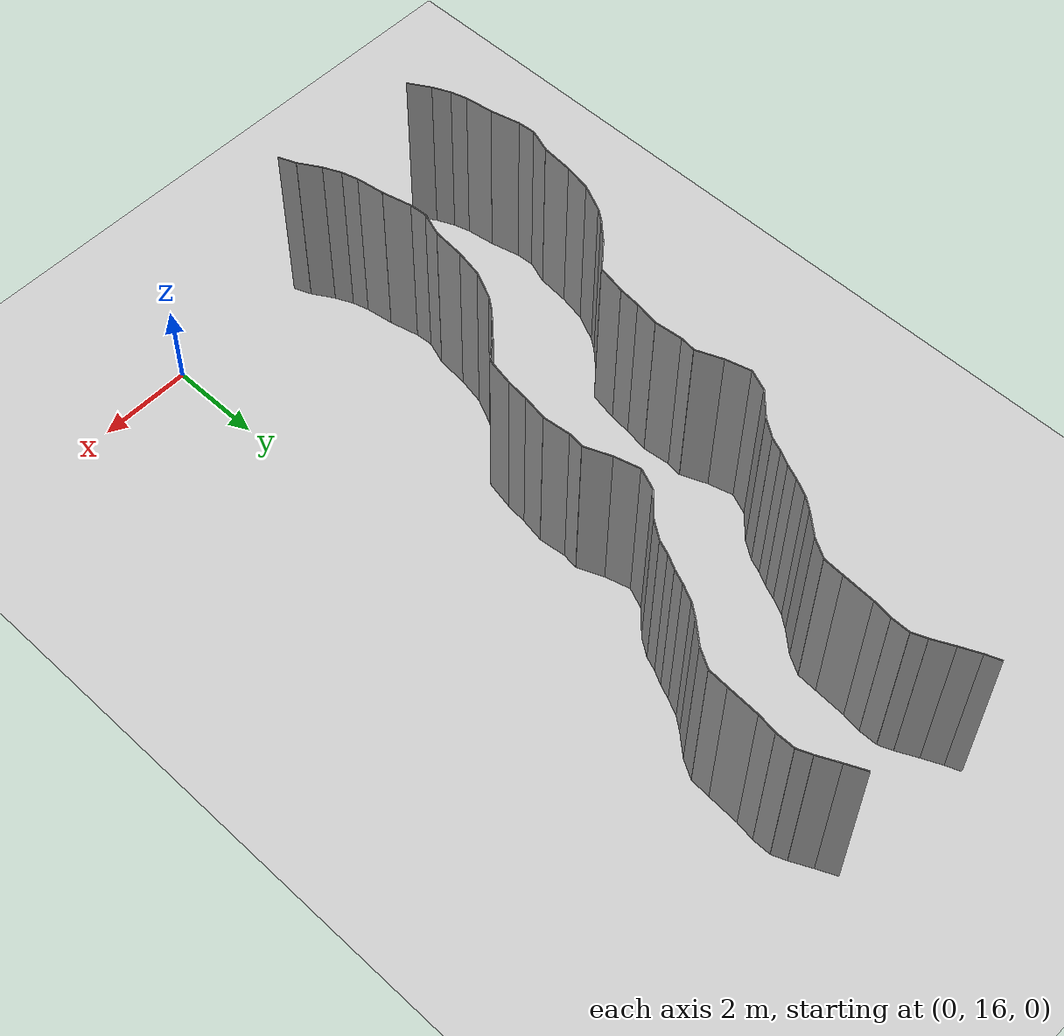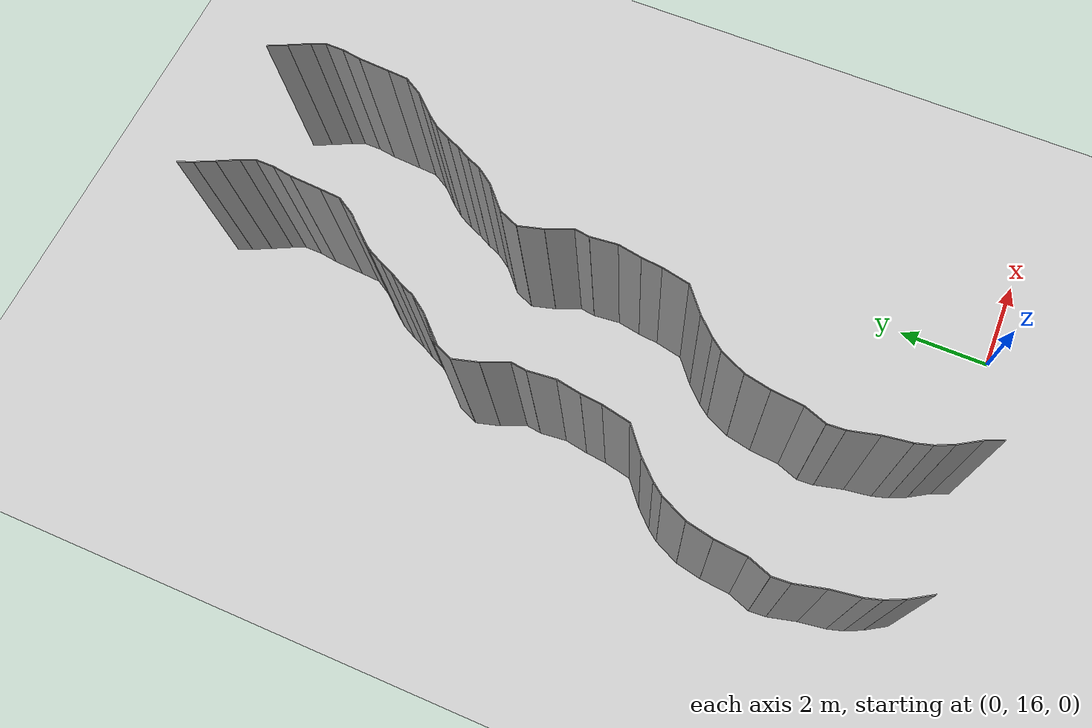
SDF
<sdf version="1.6">
 <world name="default">
  <model name="ground_plane">
   <static>1</static>
   <link name="link">
    <collision name="collision">
     <geometry><plane><normal>0 0 1</normal><size>200 200</size></plane></geometry>
     <surface><friction><ode><mu>100</mu><mu2>50</mu2></ode></friction></surface>
    </collision>
    <visual name="visual">
     <cast_shadows>0</cast_shadows>
     <geometry><plane><normal>0 0 1</normal><size>200 200</size></plane></geometry>
     <material>
      <script><uri>file://media/materials/scripts/gazebo.material</uri><name>Gazebo/Grey</name></script>
     </material>
    </visual>
   </link>
   <pose>0 100 0 0 -0 0</pose>
  </model>
  <model name="wall_73">
   <static>1</static>
   <pose>-3.2135046063755484 16.121047888354436 2 0 0 0.3879311940219435</pose>
   <link name="link">
    <collision name="collision"><geometry><box><size>0.02 0.390902560778 4</size></box></geometry></collision>
    <visual name="visual">
     <material>
      <script><name>Gazebo/Grey</name><uri>file://media/materials/scripts/gazebo.material</uri></script>
     </material>
     <geometry><box><size>0.02 0.390902560778 4</size></box></geometry>
    </visual>
   </link>
  </model>
  <model name="wall_74">
   <static>1</static>
   <pose>-6.423159324145948 16.52691575566886 2 0 0 0.5428891475938377</pose>
   <link name="link">
    <collision name="collision"><geometry><box><size>0.02 0.525425583429 4</size></box></geometry></collision>
    <visual name="visual">
     <material>
      <script><name>Gazebo/Grey</name><uri>file://media/materials/scripts/gazebo.material</uri></script>
     </material>
     <geometry><box><size>0.02 0.525425583429 4</size></box></geometry>
    </visual>
   </link>
  </model>
  <model name="wall_75">
   <static>1</static>
   <pose>-3.4231593241459484 16.52691575566886 2 0 0 0.5428891475938377</pose>
   <link name="link">
    <collision name="collision"><geometry><box><size>0.02 0.525425583429 4</size></box></geometry></collision>
    <visual name="visual">
     <material>
      <script><name>Gazebo/Grey</name><uri>file://media/materials/scripts/gazebo.material</uri></script>
     </material>
     <geometry><box><size>0.02 0.525425583429 4</size></box></geometry>
    </visual>
   </link>
  </model>
  <model name="wall_76">
   <static>1</static>
   <pose>-6.642992999649974 16.937795844756664 2 0 0 0.42482014487990305</pose>
   <link name="link">
    <collision name="collision"><geometry><box><size>0.02 0.408160677202 4</size></box></geometry></collision>
    <visual name="visual">
     <material>
      <script><name>Gazebo/Grey</name><uri>file://media/materials/scripts/gazebo.material</uri></script>
     </material>
     <geometry><box><size>0.02 0.408160677202 4</size></box></geometry>
    </visual>
   </link>
  </model>
  <model name="wall_77">
   <static>1</static>
   <pose>-3.642992999649974 16.937795844756664 2 0 0 0.42482014487990305</pose>
   <link name="link">
    <collision name="collision"><geometry><box><size>0.02 0.408160677202 4</size></box></geometry></collision>
    <visual name="visual">
     <material>
      <script><name>Gazebo/Grey</name><uri>file://media/materials/scripts/gazebo.material</uri></script>
     </material>
     <geometry><box><size>0.02 0.408160677202 4</size></box></geometry>
    </visual>
   </link>
  </model>
  <model name="wall_78">
   <static>1</static>
   <pose>-6.776393060284189 17.29553460870994 2 0 0 0.27938444021321307</pose>
   <link name="link">
    <collision name="collision"><geometry><box><size>0.02 0.357457356194 4</size></box></geometry></collision>
    <visual name="visual">
     <material>
      <script><name>Gazebo/Grey</name><uri>file://media/materials/scripts/gazebo.material</uri></script>
     </material>
     <geometry><box><size>0.02 0.357457356194 4</size></box></geometry>
    </visual>
   </link>
  </model>
  <model name="wall_79">
   <static>1</static>
   <pose>-3.776393060284189 17.29553460870994 2 0 0 0.27938444021321307</pose>
   <link name="link">
    <collision name="collision"><geometry><box><size>0.02 0.357457356194 4</size></box></geometry></collision>
    <visual name="visual">
     <material>
      <script><name>Gazebo/Grey</name><uri>file://media/materials/scripts/gazebo.material</uri></script>
     </material>
     <geometry><box><size>0.02 0.357457356194 4</size></box></geometry>
    </visual>
   </link>
  </model>
  <model name="wall_80">
   <static>1</static>
   <pose>-6.869227630001654 17.76519926221746 2 0 0 0.14517021884053985</pose>
   <link name="link">
    <collision name="collision"><geometry><box><size>0.02 0.602065172895 4</size></box></geometry></collision>
    <visual name="visual">
     <material>
      <script><name>Gazebo/Grey</name><uri>file://media/materials/scripts/gazebo.material</uri></script>
     </material>
     <geometry><box><size>0.02 0.602065172895 4</size></box></geometry>
    </visual>
   </link>
  </model>
  <model name="wall_81">
   <static>1</static>
   <pose>-3.869227630001654 17.76519926221746 2 0 0 0.14517021884053985</pose>
   <link name="link">
    <collision name="collision"><geometry><box><size>0.02 0.602065172895 4</size></box></geometry></collision>
    <visual name="visual">
     <material>
      <script><name>Gazebo/Grey</name><uri>file://media/materials/scripts/gazebo.material</uri></script>
     </material>
     <geometry><box><size>0.02 0.602065172895 4</size></box></geometry>
    </visual>
   </link>
  </model>
  <model name="wall_82">
   <static>1</static>
   <pose>-6.989073264993598 18.376267508968926 2 0 0 0.23895203746667829</pose>
   <link name="link">
    <collision name="collision"><geometry><box><size>0.02 0.644723076013 4</size></box></geometry></collision>
    <visual name="visual">
     <material>
      <script><name>Gazebo/Grey</name><uri>file://media/materials/scripts/gazebo.material</uri></script>
     </material>
     <geometry><box><size>0.02 0.644723076013 4</size></box></geometry>
    </visual>
   </link>
  </model>
  <model name="wall_83">
   <static>1</static>
   <pose>-3.989073264993598 18.376267508968926 2 0 0 0.23895203746667829</pose>
   <link name="link">
    <collision name="collision"><geometry><box><size>0.02 0.644723076013 4</size></box></geometry></collision>
    <visual name="visual">
     <material>
      <script><name>Gazebo/Grey</name><uri>file://media/materials/scripts/gazebo.material</uri></script>
     </material>
     <geometry><box><size>0.02 0.644723076013 4</size></box></geometry>
    </visual>
   </link>
  </model>
  <model name="wall_84">
   <static>1</static>
   <pose>-7.077106790539169 18.876067831468667 2 0 0 0.06280922234749874</pose>
   <link name="link">
    <collision name="collision"><geometry><box><size>0.02 0.37393372069 4</size></box></geometry></collision>
    <visual name="visual">
     <material>
      <script><name>Gazebo/Grey</name><uri>file://media/materials/scripts/gazebo.material</uri></script>
     </material>
     <geometry><box><size>0.02 0.37393372069 4</size></box></geometry>
    </visual>
   </link>
  </model>
  <model name="wall_85">
   <static>1</static>
   <pose>-4.077106790539169 18.876067831468667 2 0 0 0.06280922234749874</pose>
   <link name="link">
    <collision name="collision"><geometry><box><size>0.02 0.37393372069 4</size></box></geometry></collision>
    <visual name="visual">
     <material>
      <script><name>Gazebo/Grey</name><uri>file://media/materials/scripts/gazebo.material</uri></script>
     </material>
     <geometry><box><size>0.02 0.37393372069 4</size></box></geometry>
    </visual>
   </link>
  </model>
  <model name="wall_86">
   <static>1</static>
   <pose>-7.003478589189926 19.30421352085573 2 0 0 -0.33970364114893786</pose>
   <link name="link">
    <collision name="collision"><geometry><box><size>0.02 0.512375487982 4</size></box></geometry></collision>
    <visual name="visual">
     <material>
      <script><name>Gazebo/Grey</name><uri>file://media/materials/scripts/gazebo.material</uri></script>
     </material>
     <geometry><box><size>0.02 0.512375487982 4</size></box></geometry>
    </visual>
   </link>
  </model>
  <model name="wall_87">
   <static>1</static>
   <pose>-4.003478589189926 19.30421352085573 2 0 0 -0.33970364114893786</pose>
   <link name="link">
    <collision name="collision"><geometry><box><size>0.02 0.512375487982 4</size></box></geometry></collision>
    <visual name="visual">
     <material>
      <script><name>Gazebo/Grey</name><uri>file://media/materials/scripts/gazebo.material</uri></script>
     </material>
     <geometry><box><size>0.02 0.512375487982 4</size></box></geometry>
    </visual>
   </link>
  </model>
  <model name="wall_88">
   <static>1</static>
   <pose>-6.887422557820664 19.882661755863364 2 0 0 -0.09085114048353095</pose>
   <link name="link">
    <collision name="collision"><geometry><box><size>0.02 0.676591821013 4</size></box></geometry></collision>
    <visual name="visual">
     <material>
      <script><name>Gazebo/Grey</name><uri>file://media/materials/scripts/gazebo.material</uri></script>
     </material>
     <geometry><box><size>0.02 0.676591821013 4</size></box></geometry>
    </visual>
   </link>
  </model>
  <model name="wall_89">
   <static>1</static>
   <pose>-3.8874225578206643 19.882661755863364 2 0 0 -0.09085114048353095</pose>
   <link name="link">
    <collision name="collision"><geometry><box><size>0.02 0.676591821013 4</size></box></geometry></collision>
    <visual name="visual">
     <material>
      <script><name>Gazebo/Grey</name><uri>file://media/materials/scripts/gazebo.material</uri></script>
     </material>
     <geometry><box><size>0.02 0.676591821013 4</size></box></geometry>
    </visual>
   </link>
  </model>
  <model name="wall_90">
   <static>1</static>
   <pose>-6.799874366065468 20.504023033297106 2 0 0 -0.19727311434767117</pose>
   <link name="link">
    <collision name="collision"><geometry><box><size>0.02 0.580173738682 4</size></box></geometry></collision>
    <visual name="visual">
     <material>
      <script><name>Gazebo/Grey</name><uri>file://media/materials/scripts/gazebo.material</uri></script>
     </material>
     <geometry><box><size>0.02 0.580173738682 4</size></box></geometry>
    </visual>
   </link>
  </model>
  <model name="wall_91">
   <static>1</static>
   <pose>-3.7998743660654677 20.504023033297106 2 0 0 -0.19727311434767117</pose>
   <link name="link">
    <collision name="collision"><geometry><box><size>0.02 0.580173738682 4</size></box></geometry></collision>
    <visual name="visual">
     <material>
      <script><name>Gazebo/Grey</name><uri>file://media/materials/scripts/gazebo.material</uri></script>
     </material>
     <geometry><box><size>0.02 0.580173738682 4</size></box></geometry>
    </visual>
   </link>
  </model>
  <model name="wall_92">
   <static>1</static>
   <pose>-6.613866148938064 21.06647991866227 2 0 0 -0.4349146263797148</pose>
   <link name="link">
    <collision name="collision"><geometry><box><size>0.02 0.613065385241 4</size></box></geometry></collision>
    <visual name="visual">
     <material>
      <script><name>Gazebo/Grey</name><uri>file://media/materials/scripts/gazebo.material</uri></script>
     </material>
     <geometry><box><size>0.02 0.613065385241 4</size></box></geometry>
    </visual>
   </link>
  </model>
  <model name="wall_93">
   <static>1</static>
   <pose>-3.6138661489380643 21.06647991866227 2 0 0 -0.4349146263797148</pose>
   <link name="link">
    <collision name="collision"><geometry><box><size>0.02 0.613065385241 4</size></box></geometry></collision>
    <visual name="visual">
     <material>
      <script><name>Gazebo/Grey</name><uri>file://media/materials/scripts/gazebo.material</uri></script>
     </material>
     <geometry><box><size>0.02 0.613065385241 4</size></box></geometry>
    </visual>
   </link>
  </model>
  <model name="wall_94">
   <static>1</static>
   <pose>-6.3945283378572375 21.46519750203156 2 0 0 -0.6416140310875302</pose>
   <link name="link">
    <collision name="collision"><geometry><box><size>0.02 0.301377095944 4</size></box></geometry></collision>
    <visual name="visual">
     <material>
      <script><name>Gazebo/Grey</name><uri>file://media/materials/scripts/gazebo.material</uri></script>
     </material>
     <geometry><box><size>0.02 0.301377095944 4</size></box></geometry>
    </visual>
   </link>
  </model>
  <model name="wall_95">
   <static>1</static>
   <pose>-3.3945283378572375 21.46519750203156 2 0 0 -0.6416140310875302</pose>
   <link name="link">
    <collision name="collision"><geometry><box><size>0.02 0.301377095944 4</size></box></geometry></collision>
    <visual name="visual">
     <material>
      <script><name>Gazebo/Grey</name><uri>file://media/materials/scripts/gazebo.material</uri></script>
     </material>
     <geometry><box><size>0.02 0.301377095944 4</size></box></geometry>
    </visual>
   </link>
  </model>
  <model name="wall_96">
   <static>1</static>
   <pose>-6.1288649390775625 21.773012226696913 2 0 0 -0.7533724899892661</pose>
   <link name="link">
    <collision name="collision"><geometry><box><size>0.02 0.513016460556 4</size></box></geometry></collision>
    <visual name="visual">
     <material>
      <script><name>Gazebo/Grey</name><uri>file://media/materials/scripts/gazebo.material</uri></script>
     </material>
     <geometry><box><size>0.02 0.513016460556 4</size></box></geometry>
    </visual>
   </link>
  </model>
  <model name="wall_97">
   <static>1</static>
   <pose>-3.1288649390775625 21.773012226696913 2 0 0 -0.7533724899892661</pose>
   <link name="link">
    <collision name="collision"><geometry><box><size>0.02 0.513016460556 4</size></box></geometry></collision>
    <visual name="visual">
     <material>
      <script><name>Gazebo/Grey</name><uri>file://media/materials/scripts/gazebo.material</uri></script>
     </material>
     <geometry><box><size>0.02 0.513016460556 4</size></box></geometry>
    </visual>
   </link>
  </model>
  <model name="wall_98">
   <static>1</static>
   <pose>-5.69435812185841 22.177168624840412 2 0 0 -0.8733177553572878</pose>
   <link name="link">
    <collision name="collision"><geometry><box><size>0.02 0.675906142262 4</size></box></geometry></collision>
    <visual name="visual">
     <material>
      <script><name>Gazebo/Grey</name><uri>file://media/materials/scripts/gazebo.material</uri></script>
     </material>
     <geometry><box><size>0.02 0.675906142262 4</size></box></geometry>
    </visual>
   </link>
  </model>
  <model name="wall_99">
   <static>1</static>
   <pose>-2.69435812185841 22.177168624840412 2 0 0 -0.8733177553572878</pose>
   <link name="link">
    <collision name="collision"><geometry><box><size>0.02 0.675906142262 4</size></box></geometry></collision>
    <visual name="visual">
     <material>
      <script><name>Gazebo/Grey</name><uri>file://media/materials/scripts/gazebo.material</uri></script>
     </material>
     <geometry><box><size>0.02 0.675906142262 4</size></box></geometry>
    </visual>
   </link>
  </model>
  <model name="wall_100">
   <static>1</static>
   <pose>-5.37372864919288 22.697723565073453 2 0 0 -0.20025221801266055</pose>
   <link name="link">
    <collision name="collision"><geometry><box><size>0.02 0.619361093434 4</size></box></geometry></collision>
    <visual name="visual">
     <material>
      <script><name>Gazebo/Grey</name><uri>file://media/materials/scripts/gazebo.material</uri></script>
     </material>
     <geometry><box><size>0.02 0.619361093434 4</size></box></geometry>
    </visual>
   </link>
  </model>
  <model name="wall_101">
   <static>1</static>
   <pose>-2.3737286491928797 22.697723565073453 2 0 0 -0.20025221801266055</pose>
   <link name="link">
    <collision name="collision"><geometry><box><size>0.02 0.619361093434 4</size></box></geometry></collision>
    <visual name="visual">
     <material>
      <script><name>Gazebo/Grey</name><uri>file://media/materials/scripts/gazebo.material</uri></script>
     </material>
     <geometry><box><size>0.02 0.619361093434 4</size></box></geometry>
    </visual>
   </link>
  </model>
  <model name="wall_102">
   <static>1</static>
   <pose>-5.290187474983623 23.22880373849609 2 0 0 -0.09610783668805868</pose>
   <link name="link">
    <collision name="collision"><geometry><box><size>0.02 0.45728658191 4</size></box></geometry></collision>
    <visual name="visual">
     <material>
      <script><name>Gazebo/Grey</name><uri>file://media/materials/scripts/gazebo.material</uri></script>
     </material>
     <geometry><box><size>0.02 0.45728658191 4</size></box></geometry>
    </visual>
   </link>
  </model>
  <model name="wall_103">
   <static>1</static>
   <pose>-2.2901874749836226 23.22880373849609 2 0 0 -0.09610783668805868</pose>
   <link name="link">
    <collision name="collision"><geometry><box><size>0.02 0.45728658191 4</size></box></geometry></collision>
    <visual name="visual">
     <material>
      <script><name>Gazebo/Grey</name><uri>file://media/materials/scripts/gazebo.material</uri></script>
     </material>
     <geometry><box><size>0.02 0.45728658191 4</size></box></geometry>
    </visual>
   </link>
  </model>
  <model name="wall_104">
   <static>1</static>
   <pose>-5.223801430676246 23.71541128617367 2 0 0 -0.16993623811035988</pose>
   <link name="link">
    <collision name="collision"><geometry><box><size>0.02 0.525609922196 4</size></box></geometry></collision>
    <visual name="visual">
     <material>
      <script><name>Gazebo/Grey</name><uri>file://media/materials/scripts/gazebo.material</uri></script>
     </material>
     <geometry><box><size>0.02 0.525609922196 4</size></box></geometry>
    </visual>
   </link>
  </model>
  <model name="wall_105">
   <static>1</static>
   <pose>-2.2238014306762457 23.71541128617367 2 0 0 -0.16993623811035988</pose>
   <link name="link">
    <collision name="collision"><geometry><box><size>0.02 0.525609922196 4</size></box></geometry></collision>
    <visual name="visual">
     <material>
      <script><name>Gazebo/Grey</name><uri>file://media/materials/scripts/gazebo.material</uri></script>
     </material>
     <geometry><box><size>0.02 0.525609922196 4</size></box></geometry>
    </visual>
   </link>
  </model>
  <model name="wall_106">
   <static>1</static>
   <pose>-5.208497494413143 24.269785918924747 2 0 0 0.09834765186255229</pose>
   <link name="link">
    <collision name="collision"><geometry><box><size>0.02 0.593578775214 4</size></box></geometry></collision>
    <visual name="visual">
     <material>
      <script><name>Gazebo/Grey</name><uri>file://media/materials/scripts/gazebo.material</uri></script>
     </material>
     <geometry><box><size>0.02 0.593578775214 4</size></box></geometry>
    </visual>
   </link>
  </model>
  <model name="wall_107">
   <static>1</static>
   <pose>-2.208497494413143 24.269785918924747 2 0 0 0.09834765186255229</pose>
   <link name="link">
    <collision name="collision"><geometry><box><size>0.02 0.593578775214 4</size></box></geometry></collision>
    <visual name="visual">
     <material>
      <script><name>Gazebo/Grey</name><uri>file://media/materials/scripts/gazebo.material</uri></script>
     </material>
     <geometry><box><size>0.02 0.593578775214 4</size></box></geometry>
    </visual>
   </link>
  </model>
  <model name="wall_108">
   <static>1</static>
   <pose>-5.216070686729204 24.731080600780842 2 0 0 -0.12925241426592082</pose>
   <link name="link">
    <collision name="collision"><geometry><box><size>0.02 0.334670544321 4</size></box></geometry></collision>
    <visual name="visual">
     <material>
      <script><name>Gazebo/Grey</name><uri>file://media/materials/scripts/gazebo.material</uri></script>
     </material>
     <geometry><box><size>0.02 0.334670544321 4</size></box></geometry>
    </visual>
   </link>
  </model>
  <model name="wall_109">
   <static>1</static>
   <pose>-2.2160706867292044 24.731080600780842 2 0 0 -0.12925241426592082</pose>
   <link name="link">
    <collision name="collision"><geometry><box><size>0.02 0.334670544321 4</size></box></geometry></collision>
    <visual name="visual">
     <material>
      <script><name>Gazebo/Grey</name><uri>file://media/materials/scripts/gazebo.material</uri></script>
     </material>
     <geometry><box><size>0.02 0.334670544321 4</size></box></geometry>
    </visual>
   </link>
  </model>
  <model name="wall_110">
   <static>1</static>
   <pose>-5.307036805033922 25.170395575581715 2 0 0 0.3905070863135746</pose>
   <link name="link">
    <collision name="collision"><geometry><box><size>0.02 0.59126365241 4</size></box></geometry></collision>
    <visual name="visual">
     <material>
      <script><name>Gazebo/Grey</name><uri>file://media/materials/scripts/gazebo.material</uri></script>
     </material>
     <geometry><box><size>0.02 0.59126365241 4</size></box></geometry>
    </visual>
   </link>
  </model>
  <model name="wall_111">
   <static>1</static>
   <pose>-2.3070368050339223 25.170395575581715 2 0 0 0.3905070863135746</pose>
   <link name="link">
    <collision name="collision"><geometry><box><size>0.02 0.59126365241 4</size></box></geometry></collision>
    <visual name="visual">
     <material>
      <script><name>Gazebo/Grey</name><uri>file://media/materials/scripts/gazebo.material</uri></script>
     </material>
     <geometry><box><size>0.02 0.59126365241 4</size></box></geometry>
    </visual>
   </link>
  </model>
  <model name="wall_112">
   <static>1</static>
   <pose>-5.491503649368458 25.709231340020807 2 0 0 0.264617980472067</pose>
   <link name="link">
    <collision name="collision"><geometry><box><size>0.02 0.550066942442 4</size></box></geometry></collision>
    <visual name="visual">
     <material>
      <script><name>Gazebo/Grey</name><uri>file://media/materials/scripts/gazebo.material</uri></script>
     </material>
     <geometry><box><size>0.02 0.550066942442 4</size></box></geometry>
    </visual>
   </link>
  </model>
  <model name="wall_113">
   <static>1</static>
   <pose>-2.4915036493684584 25.709231340020807 2 0 0 0.264617980472067</pose>
   <link name="link">
    <collision name="collision"><geometry><box><size>0.02 0.550066942442 4</size></box></geometry></collision>
    <visual name="visual">
     <material>
      <script><name>Gazebo/Grey</name><uri>file://media/materials/scripts/gazebo.material</uri></script>
     </material>
     <geometry><box><size>0.02 0.550066942442 4</size></box></geometry>
    </visual>
   </link>
  </model>
  <model name="wall_114">
   <static>1</static>
   <pose>-5.472813881713269 26.192609194310858 2 0 0 -0.3940995082127415</pose>
   <link name="link">
    <collision name="collision"><geometry><box><size>0.02 0.47201892252 4</size></box></geometry></collision>
    <visual name="visual">
     <material>
      <script><name>Gazebo/Grey</name><uri>file://media/materials/scripts/gazebo.material</uri></script>
     </material>
     <geometry><box><size>0.02 0.47201892252 4</size></box></geometry>
    </visual>
   </link>
  </model>
  <model name="wall_115">
   <static>1</static>
   <pose>-2.472813881713269 26.192609194310858 2 0 0 -0.3940995082127415</pose>
   <link name="link">
    <collision name="collision"><geometry><box><size>0.02 0.47201892252 4</size></box></geometry></collision>
    <visual name="visual">
     <material>
      <script><name>Gazebo/Grey</name><uri>file://media/materials/scripts/gazebo.material</uri></script>
     </material>
     <geometry><box><size>0.02 0.47201892252 4</size></box></geometry>
    </visual>
   </link>
  </model>
  <model name="wall_116">
   <static>1</static>
   <pose>-5.147901301687834 26.63007094709179 2 0 0 -0.8178793373527447</pose>
   <link name="link">
    <collision name="collision"><geometry><box><size>0.02 0.642157679858 4</size></box></geometry></collision>
    <visual name="visual">
     <material>
      <script><name>Gazebo/Grey</name><uri>file://media/materials/scripts/gazebo.material</uri></script>
     </material>
     <geometry><box><size>0.02 0.642157679858 4</size></box></geometry>
    </visual>
   </link>
  </model>
  <model name="wall_117">
   <static>1</static>
   <pose>-2.147901301687834 26.63007094709179 2 0 0 -0.8178793373527447</pose>
   <link name="link">
    <collision name="collision"><geometry><box><size>0.02 0.642157679858 4</size></box></geometry></collision>
    <visual name="visual">
     <material>
      <script><name>Gazebo/Grey</name><uri>file://media/materials/scripts/gazebo.material</uri></script>
     </material>
     <geometry><box><size>0.02 0.642157679858 4</size></box></geometry>
    </visual>
   </link>
  </model>
  <model name="wall_118">
   <static>1</static>
   <pose>-4.7890450467739205 27.029036200676106 2 0 0 -0.6068667843275375</pose>
   <link name="link">
    <collision name="collision"><geometry><box><size>0.02 0.436845914201 4</size></box></geometry></collision>
    <visual name="visual">
     <material>
      <script><name>Gazebo/Grey</name><uri>file://media/materials/scripts/gazebo.material</uri></script>
     </material>
     <geometry><box><size>0.02 0.436845914201 4</size></box></geometry>
    </visual>
   </link>
  </model>
  <model name="wall_119">
   <static>1</static>
   <pose>-1.7890450467739205 27.029036200676106 2 0 0 -0.6068667843275375</pose>
   <link name="link">
    <collision name="collision"><geometry><box><size>0.02 0.436845914201 4</size></box></geometry></collision>
    <visual name="visual">
     <material>
      <script><name>Gazebo/Grey</name><uri>file://media/materials/scripts/gazebo.material</uri></script>
     </material>
     <geometry><box><size>0.02 0.436845914201 4</size></box></geometry>
    </visual>
   </link>
  </model>
  <model name="wall_120">
   <static>1</static>
   <pose>-4.60894440625457 27.352057261787305 2 0 0 -0.36901695267178986</pose>
   <link name="link">
    <collision name="collision"><geometry><box><size>0.02 0.307928934002 4</size></box></geometry></collision>
    <visual name="visual">
     <material>
      <script><name>Gazebo/Grey</name><uri>file://media/materials/scripts/gazebo.material</uri></script>
     </material>
     <geometry><box><size>0.02 0.307928934002 4</size></box></geometry>
    </visual>
   </link>
  </model>
  <model name="wall_121">
   <static>1</static>
   <pose>-1.6089444062545697 27.352057261787305 2 0 0 -0.36901695267178986</pose>
   <link name="link">
    <collision name="collision"><geometry><box><size>0.02 0.307928934002 4</size></box></geometry></collision>
    <visual name="visual">
     <material>
      <script><name>Gazebo/Grey</name><uri>file://media/materials/scripts/gazebo.material</uri></script>
     </material>
     <geometry><box><size>0.02 0.307928934002 4</size></box></geometry>
    </visual>
   </link>
  </model>
  <model name="wall_122">
   <static>1</static>
   <pose>-4.479094506153243 27.63827810688253 2 0 0 -0.4803591890744189</pose>
   <link name="link">
    <collision name="collision"><geometry><box><size>0.02 0.321642390205 4</size></box></geometry></collision>
    <visual name="visual">
     <material>
      <script><name>Gazebo/Grey</name><uri>file://media/materials/scripts/gazebo.material</uri></script>
     </material>
     <geometry><box><size>0.02 0.321642390205 4</size></box></geometry>
    </visual>
   </link>
  </model>
  <model name="wall_123">
   <static>1</static>
   <pose>-1.4790945061532428 27.63827810688253 2 0 0 -0.4803591890744189</pose>
   <link name="link">
    <collision name="collision"><geometry><box><size>0.02 0.321642390205 4</size></box></geometry></collision>
    <visual name="visual">
     <material>
      <script><name>Gazebo/Grey</name><uri>file://media/materials/scripts/gazebo.material</uri></script>
     </material>
     <geometry><box><size>0.02 0.321642390205 4</size></box></geometry>
    </visual>
   </link>
  </model>
  <model name="wall_124">
   <static>1</static>
   <pose>-4.344707527756809 27.927040558132283 2 0 0 -0.3899980315376524</pose>
   <link name="link">
    <collision name="collision"><geometry><box><size>0.02 0.31601254607 4</size></box></geometry></collision>
    <visual name="visual">
     <material>
      <script><name>Gazebo/Grey</name><uri>file://media/materials/scripts/gazebo.material</uri></script>
     </material>
     <geometry><box><size>0.02 0.31601254607 4</size></box></geometry>
    </visual>
   </link>
  </model>
  <model name="wall_125">
   <static>1</static>
   <pose>-1.3447075277568086 27.927040558132283 2 0 0 -0.3899980315376524</pose>
   <link name="link">
    <collision name="collision"><geometry><box><size>0.02 0.31601254607 4</size></box></geometry></collision>
    <visual name="visual">
     <material>
      <script><name>Gazebo/Grey</name><uri>file://media/materials/scripts/gazebo.material</uri></script>
     </material>
     <geometry><box><size>0.02 0.31601254607 4</size></box></geometry>
    </visual>
   </link>
  </model>
  <model name="wall_126">
   <static>1</static>
   <pose>-4.201401265759204 28.24389969364475 2 0 0 -0.4536430027394821</pose>
   <link name="link">
    <collision name="collision"><geometry><box><size>0.02 0.379855014237 4</size></box></geometry></collision>
    <visual name="visual">
     <material>
      <script><name>Gazebo/Grey</name><uri>file://media/materials/scripts/gazebo.material</uri></script>
     </material>
     <geometry><box><size>0.02 0.379855014237 4</size></box></geometry>
    </visual>
   </link>
  </model>
  <model name="wall_127">
   <static>1</static>
   <pose>-1.2014012657592037 28.24389969364475 2 0 0 -0.4536430027394821</pose>
   <link name="link">
    <collision name="collision"><geometry><box><size>0.02 0.379855014237 4</size></box></geometry></collision>
    <visual name="visual">
     <material>
      <script><name>Gazebo/Grey</name><uri>file://media/materials/scripts/gazebo.material</uri></script>
     </material>
     <geometry><box><size>0.02 0.379855014237 4</size></box></geometry>
    </visual>
   </link>
  </model>
  <model name="wall_128">
   <static>1</static>
   <pose>-4.019547175990734 28.544523528545326 2 0 0 -0.6493380972154528</pose>
   <link name="link">
    <collision name="collision"><geometry><box><size>0.02 0.326199192135 4</size></box></geometry></collision>
    <visual name="visual">
     <material>
      <script><name>Gazebo/Grey</name><uri>file://media/materials/scripts/gazebo.material</uri></script>
     </material>
     <geometry><box><size>0.02 0.326199192135 4</size></box></geometry>
    </visual>
   </link>
  </model>
  <model name="wall_129">
   <static>1</static>
   <pose>-1.0195471759907342 28.544523528545326 2 0 0 -0.6493380972154528</pose>
   <link name="link">
    <collision name="collision"><geometry><box><size>0.02 0.326199192135 4</size></box></geometry></collision>
    <visual name="visual">
     <material>
      <script><name>Gazebo/Grey</name><uri>file://media/materials/scripts/gazebo.material</uri></script>
     </material>
     <geometry><box><size>0.02 0.326199192135 4</size></box></geometry>
    </visual>
   </link>
  </model>
  <model name="wall_130">
   <static>1</static>
   <pose>-3.738358627075258 28.879678649812906 2 0 0 -0.726983573616719</pose>
   <link name="link">
    <collision name="collision"><geometry><box><size>0.02 0.549394158216 4</size></box></geometry></collision>
    <visual name="visual">
     <material>
      <script><name>Gazebo/Grey</name><uri>file://media/materials/scripts/gazebo.material</uri></script>
     </material>
     <geometry><box><size>0.02 0.549394158216 4</size></box></geometry>
    </visual>
   </link>
  </model>
  <model name="wall_131">
   <static>1</static>
   <pose>-0.7383586270752578 28.879678649812906 2 0 0 -0.726983573616719</pose>
   <link name="link">
    <collision name="collision"><geometry><box><size>0.02 0.549394158216 4</size></box></geometry></collision>
    <visual name="visual">
     <material>
      <script><name>Gazebo/Grey</name><uri>file://media/materials/scripts/gazebo.material</uri></script>
     </material>
     <geometry><box><size>0.02 0.549394158216 4</size></box></geometry>
    </visual>
   </link>
  </model>
  <model name="wall_132">
   <static>1</static>
   <pose>-3.4453840019278794 29.276958081645244 2 0 0 -0.5217880901770836</pose>
   <link name="link">
    <collision name="collision"><geometry><box><size>0.02 0.443013186459 4</size></box></geometry></collision>
    <visual name="visual">
     <material>
      <script><name>Gazebo/Grey</name><uri>file://media/materials/scripts/gazebo.material</uri></script>
     </material>
     <geometry><box><size>0.02 0.443013186459 4</size></box></geometry>
    </visual>
   </link>
  </model>
  <model name="wall_133">
   <static>1</static>
   <pose>-0.4453840019278794 29.276958081645244 2 0 0 -0.5217880901770836</pose>
   <link name="link">
    <collision name="collision"><geometry><box><size>0.02 0.443013186459 4</size></box></geometry></collision>
    <visual name="visual">
     <material>
      <script><name>Gazebo/Grey</name><uri>file://media/materials/scripts/gazebo.material</uri></script>
     </material>
     <geometry><box><size>0.02 0.443013186459 4</size></box></geometry>
    </visual>
   </link>
  </model>
  <model name="wall_134">
   <static>1</static>
   <pose>-3.3212787021667136 29.688581401991005 2 0 0 -0.062305321101703955</pose>
   <link name="link">
    <collision name="collision"><geometry><box><size>0.02 0.440039347174 4</size></box></geometry></collision>
    <visual name="visual">
     <material>
      <script><name>Gazebo/Grey</name><uri>file://media/materials/scripts/gazebo.material</uri></script>
     </material>
     <geometry><box><size>0.02 0.440039347174 4</size></box></geometry>
    </visual>
   </link>
  </model>
  <model name="wall_135">
   <static>1</static>
   <pose>-0.3212787021667136 29.688581401991005 2 0 0 -0.062305321101703955</pose>
   <link name="link">
    <collision name="collision"><geometry><box><size>0.02 0.440039347174 4</size></box></geometry></collision>
    <visual name="visual">
     <material>
      <script><name>Gazebo/Grey</name><uri>file://media/materials/scripts/gazebo.material</uri></script>
     </material>
     <geometry><box><size>0.02 0.440039347174 4</size></box></geometry>
    </visual>
   </link>
  </model>
  <model name="wall_136">
   <static>1</static>
   <pose>-3.2886567886294014 30.25486236291947 2 0 0 -0.0545263091162888</pose>
   <link name="link">
    <collision name="collision"><geometry><box><size>0.02 0.694408427959 4</size></box></geometry></collision>
    <visual name="visual">
     <material>
      <script><name>Gazebo/Grey</name><uri>file://media/materials/scripts/gazebo.material</uri></script>
     </material>
     <geometry><box><size>0.02 0.694408427959 4</size></box></geometry>
    </visual>
   </link>
  </model>
  <model name="wall_137">
   <static>1</static>
   <pose>-0.28865678862940136 30.25486236291947 2 0 0 -0.0545263091162888</pose>
   <link name="link">
    <collision name="collision"><geometry><box><size>0.02 0.694408427959 4</size></box></geometry></collision>
    <visual name="visual">
     <material>
      <script><name>Gazebo/Grey</name><uri>file://media/materials/scripts/gazebo.material</uri></script>
     </material>
     <geometry><box><size>0.02 0.694408427959 4</size></box></geometry>
    </visual>
   </link>
  </model>
  <model name="wall_138">
   <static>1</static>
   <pose>-3.240224388154447 30.807769987212932 2 0 0 -0.14213512514221402</pose>
   <link name="link">
    <collision name="collision"><geometry><box><size>0.02 0.416640329644 4</size></box></geometry></collision>
    <visual name="visual">
     <material>
      <script><name>Gazebo/Grey</name><uri>file://media/materials/scripts/gazebo.material</uri></script>
     </material>
     <geometry><box><size>0.02 0.416640329644 4</size></box></geometry>
    </visual>
   </link>
  </model>
  <model name="wall_139">
   <static>1</static>
   <pose>-0.2402243881544468 30.807769987212932 2 0 0 -0.14213512514221402</pose>
   <link name="link">
    <collision name="collision"><geometry><box><size>0.02 0.416640329644 4</size></box></geometry></collision>
    <visual name="visual">
     <material>
      <script><name>Gazebo/Grey</name><uri>file://media/materials/scripts/gazebo.material</uri></script>
     </material>
     <geometry><box><size>0.02 0.416640329644 4</size></box></geometry>
    </visual>
   </link>
  </model>
  <model name="wall_140">
   <static>1</static>
   <pose>-3.2098198051489515 31.21476751364966 2 0 0 -0.004455472092141639</pose>
   <link name="link">
    <collision name="collision"><geometry><box><size>0.02 0.401560194471 4</size></box></geometry></collision>
    <visual name="visual">
     <material>
      <script><name>Gazebo/Grey</name><uri>file://media/materials/scripts/gazebo.material</uri></script>
     </material>
     <geometry><box><size>0.02 0.401560194471 4</size></box></geometry>
    </visual>
   </link>
  </model>
  <model name="wall_141">
   <static>1</static>
   <pose>-0.2098198051489515 31.21476751364966 2 0 0 -0.004455472092141639</pose>
   <link name="link">
    <collision name="collision"><geometry><box><size>0.02 0.401560194471 4</size></box></geometry></collision>
    <visual name="visual">
     <material>
      <script><name>Gazebo/Grey</name><uri>file://media/materials/scripts/gazebo.material</uri></script>
     </material>
     <geometry><box><size>0.02 0.401560194471 4</size></box></geometry>
    </visual>
   </link>
  </model>
  <model name="wall_142">
   <static>1</static>
   <pose>-3.2686446757434298 31.56336298604865 2 0 0 0.38395699123987437</pose>
   <link name="link">
    <collision name="collision"><geometry><box><size>0.02 0.318850344431 4</size></box></geometry></collision>
    <visual name="visual">
     <material>
      <script><name>Gazebo/Grey</name><uri>file://media/materials/scripts/gazebo.material</uri></script>
     </material>
     <geometry><box><size>0.02 0.318850344431 4</size></box></geometry>
    </visual>
   </link>
  </model>
  <model name="wall_143">
   <static>1</static>
   <pose>-0.26864467574342976 31.56336298604865 2 0 0 0.38395699123987437</pose>
   <link name="link">
    <collision name="collision"><geometry><box><size>0.02 0.318850344431 4</size></box></geometry></collision>
    <visual name="visual">
     <material>
      <script><name>Gazebo/Grey</name><uri>file://media/materials/scripts/gazebo.material</uri></script>
     </material>
     <geometry><box><size>0.02 0.318850344431 4</size></box></geometry>
    </visual>
   </link>
  </model>
  <model name="wall_144">
   <static>1</static>
   <pose>-3.4340201296725317 31.927324113654063 2 0 0 0.454666002218015</pose>
   <link name="link">
    <collision name="collision"><geometry><box><size>0.02 0.481170732938 4</size></box></geometry></collision>
    <visual name="visual">
     <material>
      <script><name>Gazebo/Grey</name><uri>file://media/materials/scripts/gazebo.material</uri></script>
     </material>
     <geometry><box><size>0.02 0.481170732938 4</size></box></geometry>
    </visual>
   </link>
  </model>
  <model name="wall_145">
   <static>1</static>
   <pose>-0.4340201296725317 31.927324113654063 2 0 0 0.454666002218015</pose>
   <link name="link">
    <collision name="collision"><geometry><box><size>0.02 0.481170732938 4</size></box></geometry></collision>
    <visual name="visual">
     <material>
      <script><name>Gazebo/Grey</name><uri>file://media/materials/scripts/gazebo.material</uri></script>
     </material>
     <geometry><box><size>0.02 0.481170732938 4</size></box></geometry>
    </visual>
   </link>
  </model>
  <model name="wall_146">
   <static>1</static>
   <pose>-3.6338697060215184 32.346285266523516 2 0 0 0.4347851689013488</pose>
   <link name="link">
    <collision name="collision"><geometry><box><size>0.02 0.447246338384 4</size></box></geometry></collision>
    <visual name="visual">
     <material>
      <script><name>Gazebo/Grey</name><uri>file://media/materials/scripts/gazebo.material</uri></script>
     </material>
     <geometry><box><size>0.02 0.447246338384 4</size></box></geometry>
    </visual>
   </link>
  </model>
  <model name="wall_147">
   <static>1</static>
   <pose>-0.6338697060215184 32.346285266523516 2 0 0 0.4347851689013488</pose>
   <link name="link">
    <collision name="collision"><geometry><box><size>0.02 0.447246338384 4</size></box></geometry></collision>
    <visual name="visual">
     <material>
      <script><name>Gazebo/Grey</name><uri>file://media/materials/scripts/gazebo.material</uri></script>
     </material>
     <geometry><box><size>0.02 0.447246338384 4</size></box></geometry>
    </visual>
   </link>
  </model>
  <model name="wall_148">
   <static>1</static>
   <pose>-3.7892776898225877 32.704849208237995 2 0 0 0.37449090398083174</pose>
   <link name="link">
    <collision name="collision"><geometry><box><size>0.02 0.334689067679 4</size></box></geometry></collision>
    <visual name="visual">
     <material>
      <script><name>Gazebo/Grey</name><uri>file://media/materials/scripts/gazebo.material</uri></script>
     </material>
     <geometry><box><size>0.02 0.334689067679 4</size></box></geometry>
    </visual>
   </link>
  </model>
 </world>
</sdf>
